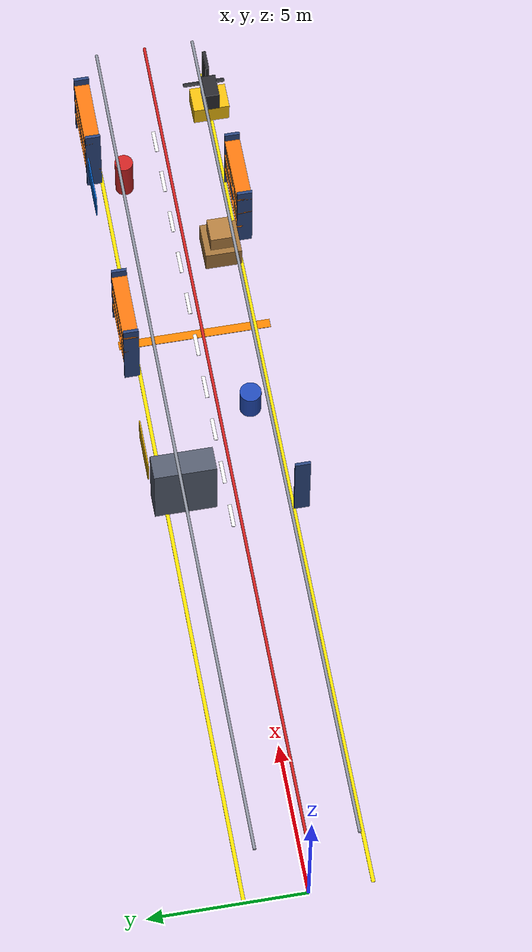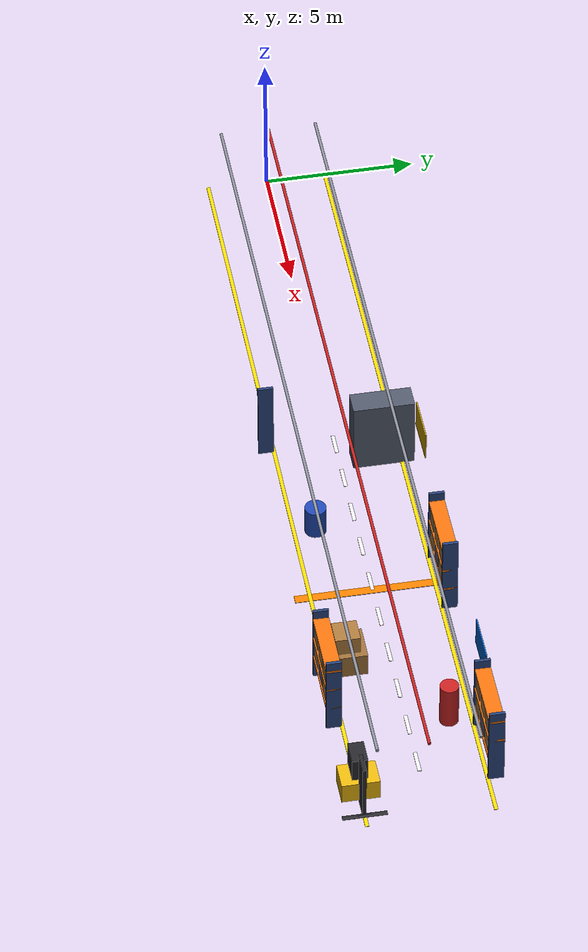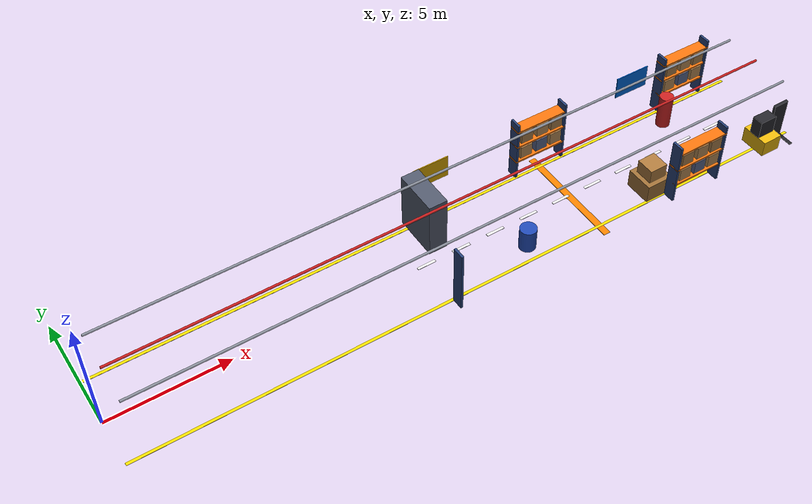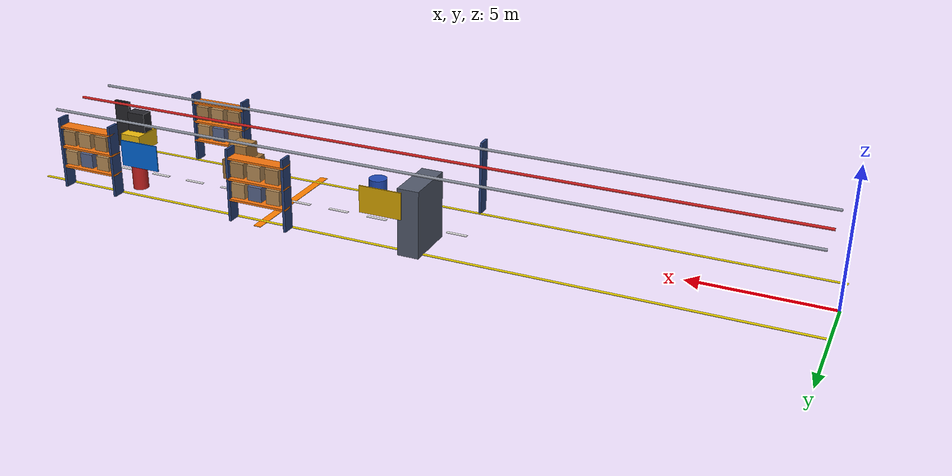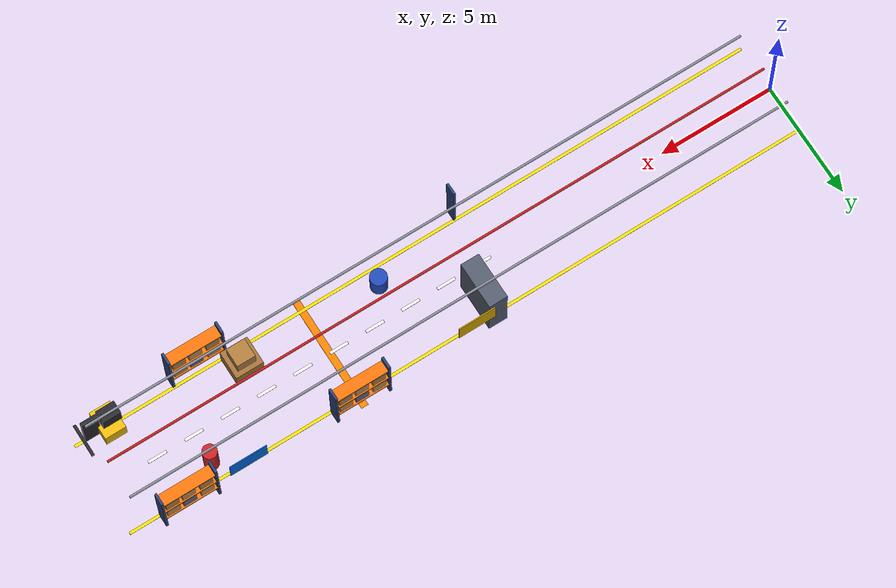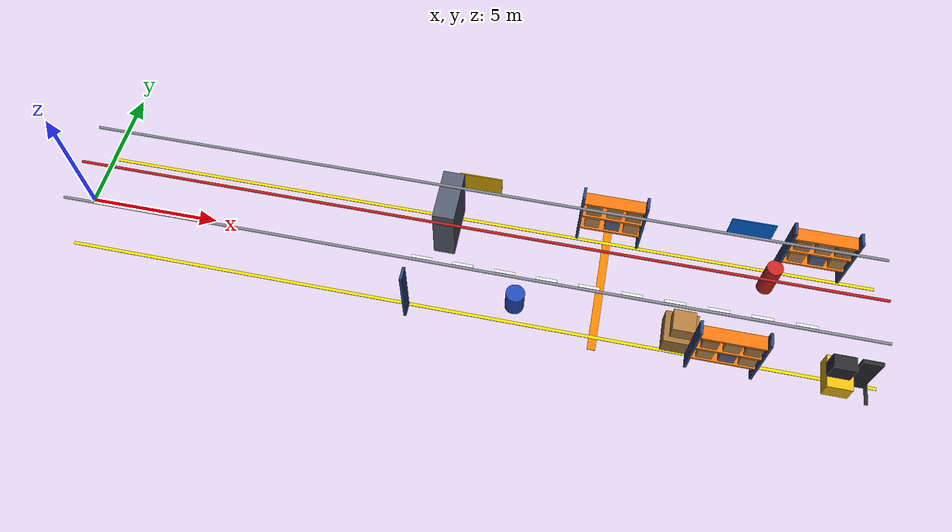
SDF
<sdf version="1.10">
 <world name="warehouse_corridor">
  <model name="zone_stripe_BC">
   <static>true</static>
   <pose>20 0 0.011 0 0 0</pose>
   <link name="link">
    <visual name="vis">
     <geometry><box><size>0.3 5 0.02</size></box></geometry>
     <material>
      <ambient>0.85 0.4 0.0 1</ambient>
      <diffuse>1.0 0.5 0.0 1</diffuse>
      <specular>0.1 0.1 0.1 1</specular>
     </material>
    </visual>
   </link>
  </model>
  <model name="lane_7">
   <static>true</static>
   <pose>13.2 0 0.012 0 0 0</pose>
   <link name="link">
    <visual name="vis">
     <geometry><box><size>0.8 0.12 0.02</size></box></geometry>
     <material>
      <ambient>0.7 0.7 0.7 1</ambient>
      <diffuse>0.92 0.92 0.92 1</diffuse>
      <specular>0.1 0.1 0.1 1</specular>
     </material>
    </visual>
   </link>
  </model>
  <model name="lane_8">
   <static>true</static>
   <pose>14.799999999999999 0 0.012 0 0 0</pose>
   <link name="link">
    <visual name="vis">
     <geometry><box><size>0.8 0.12 0.02</size></box></geometry>
     <material>
      <ambient>0.7 0.7 0.7 1</ambient>
      <diffuse>0.92 0.92 0.92 1</diffuse>
      <specular>0.1 0.1 0.1 1</specular>
     </material>
    </visual>
   </link>
  </model>
  <model name="lane_9">
   <static>true</static>
   <pose>16.4 0 0.012 0 0 0</pose>
   <link name="link">
    <visual name="vis">
     <geometry><box><size>0.8 0.12 0.02</size></box></geometry>
     <material>
      <ambient>0.7 0.7 0.7 1</ambient>
      <diffuse>0.92 0.92 0.92 1</diffuse>
      <specular>0.1 0.1 0.1 1</specular>
     </material>
    </visual>
   </link>
  </model>
  <model name="lane_10">
   <static>true</static>
   <pose>18.0 0 0.012 0 0 0</pose>
   <link name="link">
    <visual name="vis">
     <geometry><box><size>0.8 0.12 0.02</size></box></geometry>
     <material>
      <ambient>0.7 0.7 0.7 1</ambient>
      <diffuse>0.92 0.92 0.92 1</diffuse>
      <specular>0.1 0.1 0.1 1</specular>
     </material>
    </visual>
   </link>
  </model>
  <model name="lane_11">
   <static>true</static>
   <pose>19.6 0 0.012 0 0 0</pose>
   <link name="link">
    <visual name="vis">
     <geometry><box><size>0.8 0.12 0.02</size></box></geometry>
     <material>
      <ambient>0.7 0.7 0.7 1</ambient>
      <diffuse>0.92 0.92 0.92 1</diffuse>
      <specular>0.1 0.1 0.1 1</specular>
     </material>
    </visual>
   </link>
  </model>
  <model name="lane_12">
   <static>true</static>
   <pose>21.200000000000003 0 0.012 0 0 0</pose>
   <link name="link">
    <visual name="vis">
     <geometry><box><size>0.8 0.12 0.02</size></box></geometry>
     <material>
      <ambient>0.7 0.7 0.7 1</ambient>
      <diffuse>0.92 0.92 0.92 1</diffuse>
      <specular>0.1 0.1 0.1 1</specular>
     </material>
    </visual>
   </link>
  </model>
  <model name="lane_13">
   <static>true</static>
   <pose>22.800000000000004 0 0.012 0 0 0</pose>
   <link name="link">
    <visual name="vis">
     <geometry><box><size>0.8 0.12 0.02</size></box></geometry>
     <material>
      <ambient>0.7 0.7 0.7 1</ambient>
      <diffuse>0.92 0.92 0.92 1</diffuse>
      <specular>0.1 0.1 0.1 1</specular>
     </material>
    </visual>
   </link>
  </model>
  <model name="lane_14">
   <static>true</static>
   <pose>24.400000000000006 0 0.012 0 0 0</pose>
   <link name="link">
    <visual name="vis">
     <geometry><box><size>0.8 0.12 0.02</size></box></geometry>
     <material>
      <ambient>0.7 0.7 0.7 1</ambient>
      <diffuse>0.92 0.92 0.92 1</diffuse>
      <specular>0.1 0.1 0.1 1</specular>
     </material>
    </visual>
   </link>
  </model>
  <model name="lane_15">
   <static>true</static>
   <pose>26.000000000000007 0 0.012 0 0 0</pose>
   <link name="link">
    <visual name="vis">
     <geometry><box><size>0.8 0.12 0.02</size></box></geometry>
     <material>
      <ambient>0.7 0.7 0.7 1</ambient>
      <diffuse>0.92 0.92 0.92 1</diffuse>
      <specular>0.1 0.1 0.1 1</specular>
     </material>
    </visual>
   </link>
  </model>
  <model name="lane_16">
   <static>true</static>
   <pose>27.60000000000001 0 0.012 0 0 0</pose>
   <link name="link">
    <visual name="vis">
     <geometry><box><size>0.8 0.12 0.02</size></box></geometry>
     <material>
      <ambient>0.7 0.7 0.7 1</ambient>
      <diffuse>0.92 0.92 0.92 1</diffuse>
      <specular>0.1 0.1 0.1 1</specular>
     </material>
    </visual>
   </link>
  </model>
  <model name="safety_border_L">
   <static>true</static>
   <pose>15 2.0 0.012 0 0 0</pose>
   <link name="link">
    <visual name="vis">
     <geometry><box><size>30 0.12 0.02</size></box></geometry>
     <material>
      <ambient>0.55 0.48 0.0 1</ambient>
      <diffuse>0.95 0.85 0.0 1</diffuse>
      <specular>0.1 0.1 0.1 1</specular>
     </material>
    </visual>
   </link>
  </model>
  <model name="safety_border_R">
   <static>true</static>
   <pose>15 -2.0 0.012 0 0 0</pose>
   <link name="link">
    <visual name="vis">
     <geometry><box><size>30 0.12 0.02</size></box></geometry>
     <material>
      <ambient>0.55 0.48 0.0 1</ambient>
      <diffuse>0.95 0.85 0.0 1</diffuse>
      <specular>0.1 0.1 0.1 1</specular>
     </material>
    </visual>
   </link>
  </model>
  <model name="placard_B">
   <static>true</static>
   <pose>15 2.49 1.9 0 0 0</pose>
   <link name="link">
    <visual name="vis">
     <geometry><box><size>1.6 0.04 1.0</size></box></geometry>
     <material>
      <ambient>0.6 0.45 0.0 1</ambient>
      <diffuse>0.85 0.65 0.0 1</diffuse>
      <specular>0.1 0.1 0.1 1</specular>
     </material>
    </visual>
   </link>
  </model>
  <model name="placard_C">
   <static>true</static>
   <pose>25 2.49 1.9 0 0 0</pose>
   <link name="link">
    <visual name="vis">
     <geometry><box><size>1.6 0.04 1.0</size></box></geometry>
     <material>
      <ambient>0.0 0.3 0.6 1</ambient>
      <diffuse>0.0 0.4 0.85 1</diffuse>
      <specular>0.1 0.1 0.1 1</specular>
     </material>
    </visual>
   </link>
  </model>
  <model name="rack_L200_up0">
   <static>true</static>
   <pose>18.85 2.25 1.4 0 0 0</pose>
   <link name="link">
    <collision name="col"><geometry><box><size>0.1 0.5 2.8</size></box></geometry></collision>
    <visual name="vis">
     <geometry><box><size>0.1 0.5 2.8</size></box></geometry>
     <material>
      <ambient>0.10 0.16 0.30 1</ambient>
      <diffuse>0.16 0.26 0.48 1</diffuse>
      <specular>0.3 0.3 0.35 1</specular>
     </material>
    </visual>
   </link>
  </model>
  <model name="rack_L200_up1">
   <static>true</static>
   <pose>21.15 2.25 1.4 0 0 0</pose>
   <link name="link">
    <collision name="col"><geometry><box><size>0.1 0.5 2.8</size></box></geometry></collision>
    <visual name="vis">
     <geometry><box><size>0.1 0.5 2.8</size></box></geometry>
     <material>
      <ambient>0.10 0.16 0.30 1</ambient>
      <diffuse>0.16 0.26 0.48 1</diffuse>
      <specular>0.3 0.3 0.35 1</specular>
     </material>
    </visual>
   </link>
  </model>
  <model name="rack_L200_beam0">
   <static>true</static>
   <pose>20.0 2.25 0.85 0 0 0</pose>
   <link name="link">
    <collision name="col"><geometry><box><size>2.4 0.5 0.08</size></box></geometry></collision>
    <visual name="vis">
     <geometry><box><size>2.4 0.5 0.08</size></box></geometry>
     <material>
      <ambient>0.55 0.27 0.0 1</ambient>
      <diffuse>0.95 0.45 0.05 1</diffuse>
      <specular>0.3 0.2 0.1 1</specular>
     </material>
    </visual>
   </link>
  </model>
  <model name="rack_L200_beam1">
   <static>true</static>
   <pose>20.0 2.25 1.65 0 0 0</pose>
   <link name="link">
    <collision name="col"><geometry><box><size>2.4 0.5 0.08</size></box></geometry></collision>
    <visual name="vis">
     <geometry><box><size>2.4 0.5 0.08</size></box></geometry>
     <material>
      <ambient>0.55 0.27 0.0 1</ambient>
      <diffuse>0.95 0.45 0.05 1</diffuse>
      <specular>0.3 0.2 0.1 1</specular>
     </material>
    </visual>
   </link>
  </model>
  <model name="rack_L200_beam2">
   <static>true</static>
   <pose>20.0 2.25 2.45 0 0 0</pose>
   <link name="link">
    <collision name="col"><geometry><box><size>2.4 0.5 0.08</size></box></geometry></collision>
    <visual name="vis">
     <geometry><box><size>2.4 0.5 0.08</size></box></geometry>
     <material>
      <ambient>0.55 0.27 0.0 1</ambient>
      <diffuse>0.95 0.45 0.05 1</diffuse>
      <specular>0.3 0.2 0.1 1</specular>
     </material>
    </visual>
   </link>
  </model>
  <model name="rack_L200_box00">
   <static>true</static>
   <pose>19.3 2.25 1.25 0 0 0</pose>
   <link name="link">
    <collision name="col"><geometry><box><size>0.55 0.45 0.55</size></box></geometry></collision>
    <visual name="vis">
     <geometry><box><size>0.55 0.45 0.55</size></box></geometry>
     <material>
      <ambient>0.42 0.30 0.16 1</ambient>
      <diffuse>0.72 0.55 0.34 1</diffuse>
      <specular>0.1 0.1 0.1 1</specular>
     </material>
    </visual>
   </link>
  </model>
  <model name="rack_L200_box01">
   <static>true</static>
   <pose>20.05 2.25 1.25 0 0 0</pose>
   <link name="link">
    <collision name="col"><geometry><box><size>0.55 0.45 0.55</size></box></geometry></collision>
    <visual name="vis">
     <geometry><box><size>0.55 0.45 0.55</size></box></geometry>
     <material>
      <ambient>0.20 0.22 0.28 1</ambient>
      <diffuse>0.35 0.40 0.55 1</diffuse>
      <specular>0.5 0.5 0.6 1</specular>
     </material>
    </visual>
   </link>
  </model>
  <model name="rack_L200_box02">
   <static>true</static>
   <pose>20.75 2.25 1.25 0 0 0</pose>
   <link name="link">
    <collision name="col"><geometry><box><size>0.55 0.45 0.55</size></box></geometry></collision>
    <visual name="vis">
     <geometry><box><size>0.55 0.45 0.55</size></box></geometry>
     <material>
      <ambient>0.42 0.30 0.16 1</ambient>
      <diffuse>0.72 0.55 0.34 1</diffuse>
      <specular>0.1 0.1 0.1 1</specular>
     </material>
    </visual>
   </link>
  </model>
  <model name="rack_L200_box10">
   <static>true</static>
   <pose>19.3 2.25 2.05 0 0 0</pose>
   <link name="link">
    <collision name="col"><geometry><box><size>0.55 0.45 0.55</size></box></geometry></collision>
    <visual name="vis">
     <geometry><box><size>0.55 0.45 0.55</size></box></geometry>
     <material>
      <ambient>0.38 0.27 0.14 1</ambient>
      <diffuse>0.66 0.49 0.29 1</diffuse>
      <specular>0.1 0.1 0.1 1</specular>
     </material>
    </visual>
   </link>
  </model>
  <model name="rack_L200_box11">
   <static>true</static>
   <pose>20.05 2.25 2.05 0 0 0</pose>
   <link name="link">
    <collision name="col"><geometry><box><size>0.55 0.45 0.55</size></box></geometry></collision>
    <visual name="vis">
     <geometry><box><size>0.55 0.45 0.55</size></box></geometry>
     <material>
      <ambient>0.42 0.30 0.16 1</ambient>
      <diffuse>0.72 0.55 0.34 1</diffuse>
      <specular>0.1 0.1 0.1 1</specular>
     </material>
    </visual>
   </link>
  </model>
  <model name="rack_L200_box12">
   <static>true</static>
   <pose>20.75 2.25 2.05 0 0 0</pose>
   <link name="link">
    <collision name="col"><geometry><box><size>0.55 0.45 0.55</size></box></geometry></collision>
    <visual name="vis">
     <geometry><box><size>0.55 0.45 0.55</size></box></geometry>
     <material>
      <ambient>0.38 0.27 0.14 1</ambient>
      <diffuse>0.66 0.49 0.29 1</diffuse>
      <specular>0.1 0.1 0.1 1</specular>
     </material>
    </visual>
   </link>
  </model>
  <model name="rack_L275_up0">
   <static>true</static>
   <pose>26.35 2.25 1.4 0 0 0</pose>
   <link name="link">
    <collision name="col"><geometry><box><size>0.1 0.5 2.8</size></box></geometry></collision>
    <visual name="vis">
     <geometry><box><size>0.1 0.5 2.8</size></box></geometry>
     <material>
      <ambient>0.10 0.16 0.30 1</ambient>
      <diffuse>0.16 0.26 0.48 1</diffuse>
      <specular>0.3 0.3 0.35 1</specular>
     </material>
    </visual>
   </link>
  </model>
  <model name="rack_L275_up1">
   <static>true</static>
   <pose>28.65 2.25 1.4 0 0 0</pose>
   <link name="link">
    <collision name="col"><geometry><box><size>0.1 0.5 2.8</size></box></geometry></collision>
    <visual name="vis">
     <geometry><box><size>0.1 0.5 2.8</size></box></geometry>
     <material>
      <ambient>0.10 0.16 0.30 1</ambient>
      <diffuse>0.16 0.26 0.48 1</diffuse>
      <specular>0.3 0.3 0.35 1</specular>
     </material>
    </visual>
   </link>
  </model>
  <model name="rack_L275_beam0">
   <static>true</static>
   <pose>27.5 2.25 0.85 0 0 0</pose>
   <link name="link">
    <collision name="col"><geometry><box><size>2.4 0.5 0.08</size></box></geometry></collision>
    <visual name="vis">
     <geometry><box><size>2.4 0.5 0.08</size></box></geometry>
     <material>
      <ambient>0.55 0.27 0.0 1</ambient>
      <diffuse>0.95 0.45 0.05 1</diffuse>
      <specular>0.3 0.2 0.1 1</specular>
     </material>
    </visual>
   </link>
  </model>
  <model name="rack_L275_beam1">
   <static>true</static>
   <pose>27.5 2.25 1.65 0 0 0</pose>
   <link name="link">
    <collision name="col"><geometry><box><size>2.4 0.5 0.08</size></box></geometry></collision>
    <visual name="vis">
     <geometry><box><size>2.4 0.5 0.08</size></box></geometry>
     <material>
      <ambient>0.55 0.27 0.0 1</ambient>
      <diffuse>0.95 0.45 0.05 1</diffuse>
      <specular>0.3 0.2 0.1 1</specular>
     </material>
    </visual>
   </link>
  </model>
  <model name="rack_L275_beam2">
   <static>true</static>
   <pose>27.5 2.25 2.45 0 0 0</pose>
   <link name="link">
    <collision name="col"><geometry><box><size>2.4 0.5 0.08</size></box></geometry></collision>
    <visual name="vis">
     <geometry><box><size>2.4 0.5 0.08</size></box></geometry>
     <material>
      <ambient>0.55 0.27 0.0 1</ambient>
      <diffuse>0.95 0.45 0.05 1</diffuse>
      <specular>0.3 0.2 0.1 1</specular>
     </material>
    </visual>
   </link>
  </model>
  <model name="rack_L275_box00">
   <static>true</static>
   <pose>26.8 2.25 1.25 0 0 0</pose>
   <link name="link">
    <collision name="col"><geometry><box><size>0.55 0.45 0.55</size></box></geometry></collision>
    <visual name="vis">
     <geometry><box><size>0.55 0.45 0.55</size></box></geometry>
     <material>
      <ambient>0.42 0.30 0.16 1</ambient>
      <diffuse>0.72 0.55 0.34 1</diffuse>
      <specular>0.1 0.1 0.1 1</specular>
     </material>
    </visual>
   </link>
  </model>
  <model name="rack_L275_box01">
   <static>true</static>
   <pose>27.55 2.25 1.25 0 0 0</pose>
   <link name="link">
    <collision name="col"><geometry><box><size>0.55 0.45 0.55</size></box></geometry></collision>
    <visual name="vis">
     <geometry><box><size>0.55 0.45 0.55</size></box></geometry>
     <material>
      <ambient>0.20 0.22 0.28 1</ambient>
      <diffuse>0.35 0.40 0.55 1</diffuse>
      <specular>0.5 0.5 0.6 1</specular>
     </material>
    </visual>
   </link>
  </model>
  <model name="rack_L275_box02">
   <static>true</static>
   <pose>28.25 2.25 1.25 0 0 0</pose>
   <link name="link">
    <collision name="col"><geometry><box><size>0.55 0.45 0.55</size></box></geometry></collision>
    <visual name="vis">
     <geometry><box><size>0.55 0.45 0.55</size></box></geometry>
     <material>
      <ambient>0.42 0.30 0.16 1</ambient>
      <diffuse>0.72 0.55 0.34 1</diffuse>
      <specular>0.1 0.1 0.1 1</specular>
     </material>
    </visual>
   </link>
  </model>
  <model name="rack_L275_box10">
   <static>true</static>
   <pose>26.8 2.25 2.05 0 0 0</pose>
   <link name="link">
    <collision name="col"><geometry><box><size>0.55 0.45 0.55</size></box></geometry></collision>
    <visual name="vis">
     <geometry><box><size>0.55 0.45 0.55</size></box></geometry>
     <material>
      <ambient>0.38 0.27 0.14 1</ambient>
      <diffuse>0.66 0.49 0.29 1</diffuse>
      <specular>0.1 0.1 0.1 1</specular>
     </material>
    </visual>
   </link>
  </model>
  <model name="rack_L275_box11">
   <static>true</static>
   <pose>27.55 2.25 2.05 0 0 0</pose>
   <link name="link">
    <collision name="col"><geometry><box><size>0.55 0.45 0.55</size></box></geometry></collision>
    <visual name="vis">
     <geometry><box><size>0.55 0.45 0.55</size></box></geometry>
     <material>
      <ambient>0.42 0.30 0.16 1</ambient>
      <diffuse>0.72 0.55 0.34 1</diffuse>
      <specular>0.1 0.1 0.1 1</specular>
     </material>
    </visual>
   </link>
  </model>
  <model name="rack_L275_box12">
   <static>true</static>
   <pose>28.25 2.25 2.05 0 0 0</pose>
   <link name="link">
    <collision name="col"><geometry><box><size>0.55 0.45 0.55</size></box></geometry></collision>
    <visual name="vis">
     <geometry><box><size>0.55 0.45 0.55</size></box></geometry>
     <material>
      <ambient>0.38 0.27 0.14 1</ambient>
      <diffuse>0.66 0.49 0.29 1</diffuse>
      <specular>0.1 0.1 0.1 1</specular>
     </material>
    </visual>
   </link>
  </model>
  <model name="rack_R120_up1">
   <static>true</static>
   <pose>13.15 -2.25 1.4 0 0 0</pose>
   <link name="link">
    <collision name="col"><geometry><box><size>0.1 0.5 2.8</size></box></geometry></collision>
    <visual name="vis">
     <geometry><box><size>0.1 0.5 2.8</size></box></geometry>
     <material>
      <ambient>0.10 0.16 0.30 1</ambient>
      <diffuse>0.16 0.26 0.48 1</diffuse>
      <specular>0.3 0.3 0.35 1</specular>
     </material>
    </visual>
   </link>
  </model>
  <model name="rack_R245_up0">
   <static>true</static>
   <pose>23.35 -2.25 1.4 0 0 0</pose>
   <link name="link">
    <collision name="col"><geometry><box><size>0.1 0.5 2.8</size></box></geometry></collision>
    <visual name="vis">
     <geometry><box><size>0.1 0.5 2.8</size></box></geometry>
     <material>
      <ambient>0.10 0.16 0.30 1</ambient>
      <diffuse>0.16 0.26 0.48 1</diffuse>
      <specular>0.3 0.3 0.35 1</specular>
     </material>
    </visual>
   </link>
  </model>
  <model name="rack_R245_up1">
   <static>true</static>
   <pose>25.65 -2.25 1.4 0 0 0</pose>
   <link name="link">
    <collision name="col"><geometry><box><size>0.1 0.5 2.8</size></box></geometry></collision>
    <visual name="vis">
     <geometry><box><size>0.1 0.5 2.8</size></box></geometry>
     <material>
      <ambient>0.10 0.16 0.30 1</ambient>
      <diffuse>0.16 0.26 0.48 1</diffuse>
      <specular>0.3 0.3 0.35 1</specular>
     </material>
    </visual>
   </link>
  </model>
  <model name="rack_R245_beam0">
   <static>true</static>
   <pose>24.5 -2.25 0.85 0 0 0</pose>
   <link name="link">
    <collision name="col"><geometry><box><size>2.4 0.5 0.08</size></box></geometry></collision>
    <visual name="vis">
     <geometry><box><size>2.4 0.5 0.08</size></box></geometry>
     <material>
      <ambient>0.55 0.27 0.0 1</ambient>
      <diffuse>0.95 0.45 0.05 1</diffuse>
      <specular>0.3 0.2 0.1 1</specular>
     </material>
    </visual>
   </link>
  </model>
  <model name="rack_R245_beam1">
   <static>true</static>
   <pose>24.5 -2.25 1.65 0 0 0</pose>
   <link name="link">
    <collision name="col"><geometry><box><size>2.4 0.5 0.08</size></box></geometry></collision>
    <visual name="vis">
     <geometry><box><size>2.4 0.5 0.08</size></box></geometry>
     <material>
      <ambient>0.55 0.27 0.0 1</ambient>
      <diffuse>0.95 0.45 0.05 1</diffuse>
      <specular>0.3 0.2 0.1 1</specular>
     </material>
    </visual>
   </link>
  </model>
  <model name="rack_R245_beam2">
   <static>true</static>
   <pose>24.5 -2.25 2.45 0 0 0</pose>
   <link name="link">
    <collision name="col"><geometry><box><size>2.4 0.5 0.08</size></box></geometry></collision>
    <visual name="vis">
     <geometry><box><size>2.4 0.5 0.08</size></box></geometry>
     <material>
      <ambient>0.55 0.27 0.0 1</ambient>
      <diffuse>0.95 0.45 0.05 1</diffuse>
      <specular>0.3 0.2 0.1 1</specular>
     </material>
    </visual>
   </link>
  </model>
  <model name="rack_R245_box00">
   <static>true</static>
   <pose>23.8 -2.25 1.25 0 0 0</pose>
   <link name="link">
    <collision name="col"><geometry><box><size>0.55 0.45 0.55</size></box></geometry></collision>
    <visual name="vis">
     <geometry><box><size>0.55 0.45 0.55</size></box></geometry>
     <material>
      <ambient>0.42 0.30 0.16 1</ambient>
      <diffuse>0.72 0.55 0.34 1</diffuse>
      <specular>0.1 0.1 0.1 1</specular>
     </material>
    </visual>
   </link>
  </model>
  <model name="rack_R245_box01">
   <static>true</static>
   <pose>24.55 -2.25 1.25 0 0 0</pose>
   <link name="link">
    <collision name="col"><geometry><box><size>0.55 0.45 0.55</size></box></geometry></collision>
    <visual name="vis">
     <geometry><box><size>0.55 0.45 0.55</size></box></geometry>
     <material>
      <ambient>0.20 0.22 0.28 1</ambient>
      <diffuse>0.35 0.40 0.55 1</diffuse>
      <specular>0.5 0.5 0.6 1</specular>
     </material>
    </visual>
   </link>
  </model>
  <model name="rack_R245_box02">
   <static>true</static>
   <pose>25.25 -2.25 1.25 0 0 0</pose>
   <link name="link">
    <collision name="col"><geometry><box><size>0.55 0.45 0.55</size></box></geometry></collision>
    <visual name="vis">
     <geometry><box><size>0.55 0.45 0.55</size></box></geometry>
     <material>
      <ambient>0.42 0.30 0.16 1</ambient>
      <diffuse>0.72 0.55 0.34 1</diffuse>
      <specular>0.1 0.1 0.1 1</specular>
     </material>
    </visual>
   </link>
  </model>
  <model name="rack_R245_box10">
   <static>true</static>
   <pose>23.8 -2.25 2.05 0 0 0</pose>
   <link name="link">
    <collision name="col"><geometry><box><size>0.55 0.45 0.55</size></box></geometry></collision>
    <visual name="vis">
     <geometry><box><size>0.55 0.45 0.55</size></box></geometry>
     <material>
      <ambient>0.38 0.27 0.14 1</ambient>
      <diffuse>0.66 0.49 0.29 1</diffuse>
      <specular>0.1 0.1 0.1 1</specular>
     </material>
    </visual>
   </link>
  </model>
  <model name="rack_R245_box11">
   <static>true</static>
   <pose>24.55 -2.25 2.05 0 0 0</pose>
   <link name="link">
    <collision name="col"><geometry><box><size>0.55 0.45 0.55</size></box></geometry></collision>
    <visual name="vis">
     <geometry><box><size>0.55 0.45 0.55</size></box></geometry>
     <material>
      <ambient>0.42 0.30 0.16 1</ambient>
      <diffuse>0.72 0.55 0.34 1</diffuse>
      <specular>0.1 0.1 0.1 1</specular>
     </material>
    </visual>
   </link>
  </model>
  <model name="rack_R245_box12">
   <static>true</static>
   <pose>25.25 -2.25 2.05 0 0 0</pose>
   <link name="link">
    <collision name="col"><geometry><box><size>0.55 0.45 0.55</size></box></geometry></collision>
    <visual name="vis">
     <geometry><box><size>0.55 0.45 0.55</size></box></geometry>
     <material>
      <ambient>0.38 0.27 0.14 1</ambient>
      <diffuse>0.66 0.49 0.29 1</diffuse>
      <specular>0.1 0.1 0.1 1</specular>
     </material>
    </visual>
   </link>
  </model>
  <model name="forklift_body">
   <static>true</static>
   <pose>28.5 -2.0 0.45 0 0 1.5708</pose>
   <link name="link">
    <collision name="col"><geometry><box><size>1.2 0.9 0.7</size></box></geometry></collision>
    <visual name="vis">
     <geometry><box><size>1.2 0.9 0.7</size></box></geometry>
     <material>
      <ambient>0.55 0.42 0.0 1</ambient>
      <diffuse>0.92 0.72 0.05 1</diffuse>
      <specular>0.3 0.3 0.2 1</specular>
     </material>
    </visual>
   </link>
  </model>
  <model name="forklift_cab">
   <static>true</static>
   <pose>28.4 -2.0 1.25 0 0 1.5708</pose>
   <link name="link">
    <collision name="col"><geometry><box><size>0.5 0.8 0.8</size></box></geometry></collision>
    <visual name="vis">
     <geometry><box><size>0.5 0.8 0.8</size></box></geometry>
     <material>
      <ambient>0.08 0.08 0.09 1</ambient>
      <diffuse>0.15 0.15 0.17 1</diffuse>
      <specular>0.3 0.3 0.3 1</specular>
     </material>
    </visual>
   </link>
  </model>
  <model name="forklift_mast">
   <static>true</static>
   <pose>29.2 -2.0 1.0 0 0 1.5708</pose>
   <link name="link">
    <collision name="col"><geometry><box><size>0.12 0.7 2.0</size></box></geometry></collision>
    <visual name="vis">
     <geometry><box><size>0.12 0.7 2.0</size></box></geometry>
     <material>
      <ambient>0.08 0.08 0.09 1</ambient>
      <diffuse>0.15 0.15 0.17 1</diffuse>
      <specular>0.3 0.3 0.3 1</specular>
     </material>
    </visual>
   </link>
  </model>
  <model name="forklift_fork0">
   <static>true</static>
   <pose>29.6 -2.25 0.08 0 0 1.5708</pose>
   <link name="link">
    <collision name="col"><geometry><box><size>0.9 0.12 0.06</size></box></geometry></collision>
    <visual name="vis">
     <geometry><box><size>0.9 0.12 0.06</size></box></geometry>
     <material>
      <ambient>0.08 0.08 0.09 1</ambient>
      <diffuse>0.15 0.15 0.17 1</diffuse>
      <specular>0.3 0.3 0.3 1</specular>
     </material>
    </visual>
   </link>
  </model>
  <model name="forklift_fork1">
   <static>true</static>
   <pose>29.6 -1.75 0.08 0 0 1.5708</pose>
   <link name="link">
    <collision name="col"><geometry><box><size>0.9 0.12 0.06</size></box></geometry></collision>
    <visual name="vis">
     <geometry><box><size>0.9 0.12 0.06</size></box></geometry>
     <material>
      <ambient>0.08 0.08 0.09 1</ambient>
      <diffuse>0.15 0.15 0.17 1</diffuse>
      <specular>0.3 0.3 0.3 1</specular>
     </material>
    </visual>
   </link>
  </model>
  <model name="pipe_0">
   <static>true</static>
   <pose>15 1.6 2.75 0 1.5708 0</pose>
   <link name="link">
    <visual name="vis">
     <geometry><cylinder><radius>0.05</radius><length>29.0</length></cylinder></geometry>
     <material>
      <ambient>0.35 0.36 0.40 1</ambient>
      <diffuse>0.55 0.57 0.62 1</diffuse>
      <specular>0.4 0.4 0.4 1</specular>
     </material>
    </visual>
   </link>
  </model>
  <model name="pipe_1">
   <static>true</static>
   <pose>15 0.0 2.75 0 1.5708 0</pose>
   <link name="link">
    <visual name="vis">
     <geometry><cylinder><radius>0.05</radius><length>29.0</length></cylinder></geometry>
     <material>
      <ambient>0.45 0.05 0.05 1</ambient>
      <diffuse>0.80 0.12 0.12 1</diffuse>
      <specular>0.1 0.1 0.1 1</specular>
     </material>
    </visual>
   </link>
  </model>
  <model name="pipe_2">
   <static>true</static>
   <pose>15 -1.6 2.75 0 1.5708 0</pose>
   <link name="link">
    <visual name="vis">
     <geometry><cylinder><radius>0.05</radius><length>29.0</length></cylinder></geometry>
     <material>
      <ambient>0.35 0.36 0.40 1</ambient>
      <diffuse>0.55 0.57 0.62 1</diffuse>
      <specular>0.4 0.4 0.4 1</specular>
     </material>
    </visual>
   </link>
  </model>
  <model name="obs_b_shelf">
   <static>true</static>
   <pose>14 1.4 1.25 0 0 0</pose>
   <link name="link">
    <collision name="col"><geometry><box><size>0.8 2.0 2.5</size></box></geometry></collision>
    <visual name="vis">
     <geometry><box><size>0.8 2.0 2.5</size></box></geometry>
     <material>
      <ambient>0.20 0.22 0.26 1</ambient>
      <diffuse>0.32 0.35 0.42 1</diffuse>
      <specular>0.4 0.4 0.45 1</specular>
     </material>
    </visual>
   </link>
  </model>
  <model name="obs_b_barrel">
   <static>true</static>
   <pose>17 -1.3 0.5 0 0 0</pose>
   <link name="link">
    <collision name="col">
     <geometry><cylinder><radius>0.35</radius><length>1.0</length></cylinder></geometry>
    </collision>
    <visual name="vis">
     <geometry><cylinder><radius>0.35</radius><length>1.0</length></cylinder></geometry>
     <material>
      <ambient>0.07 0.16 0.42 1</ambient>
      <diffuse>0.12 0.28 0.70 1</diffuse>
      <specular>0.3 0.3 0.4 1</specular>
     </material>
    </visual>
   </link>
  </model>
  <model name="obs_c_crate_low">
   <static>true</static>
   <pose>23 -1.4 0.4 0 0 0</pose>
   <link name="link">
    <collision name="col"><geometry><box><size>1.2 1.2 0.8</size></box></geometry></collision>
    <visual name="vis">
     <geometry><box><size>1.2 1.2 0.8</size></box></geometry>
     <material>
      <ambient>0.40 0.28 0.14 1</ambient>
      <diffuse>0.62 0.44 0.22 1</diffuse>
      <specular>0.1 0.1 0.1 1</specular>
     </material>
    </visual>
   </link>
  </model>
  <model name="obs_c_crate_high">
   <static>true</static>
   <pose>23 -1.4 1.1 0 0 0</pose>
   <link name="link">
    <collision name="col"><geometry><box><size>0.8 0.8 0.6</size></box></geometry></collision>
    <visual name="vis">
     <geometry><box><size>0.8 0.8 0.6</size></box></geometry>
     <material>
      <ambient>0.46 0.32 0.16 1</ambient>
      <diffuse>0.68 0.48 0.24 1</diffuse>
      <specular>0.1 0.1 0.1 1</specular>
     </material>
    </visual>
   </link>
  </model>
  <model name="obs_c_drum">
   <static>true</static>
   <pose>26 1.3 0.75 0 0 0</pose>
   <link name="link">
    <collision name="col">
     <geometry><cylinder><radius>0.3</radius><length>1.5</length></cylinder></geometry>
    </collision>
    <visual name="vis">
     <geometry><cylinder><radius>0.3</radius><length>1.5</length></cylinder></geometry>
     <material>
      <ambient>0.45 0.07 0.07 1</ambient>
      <diffuse>0.78 0.13 0.13 1</diffuse>
      <specular>0.3 0.2 0.2 1</specular>
     </material>
    </visual>
   </link>
  </model>
 </world>
</sdf>
